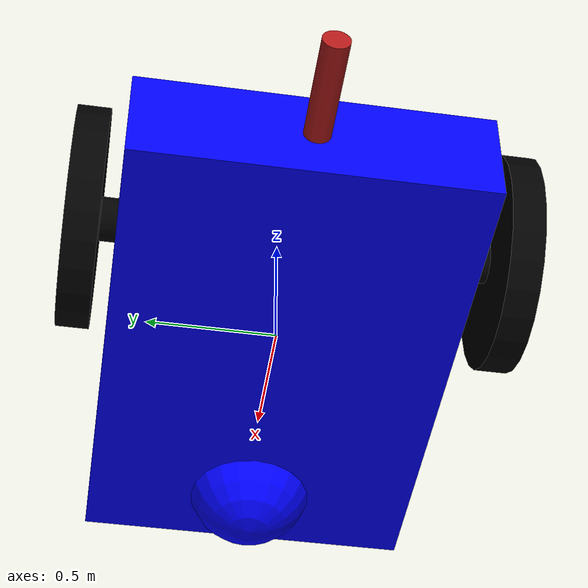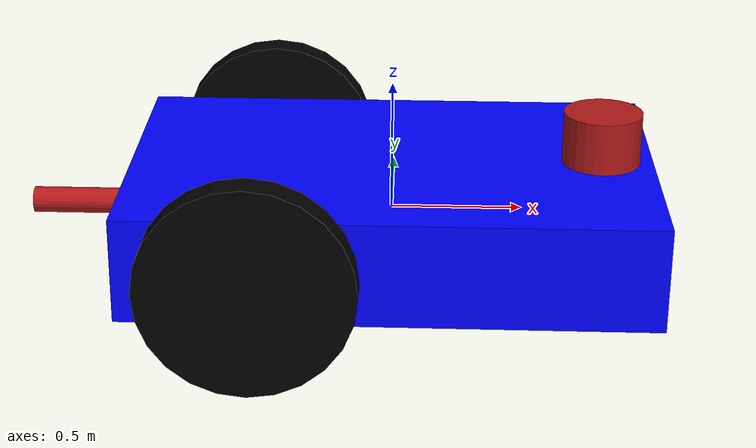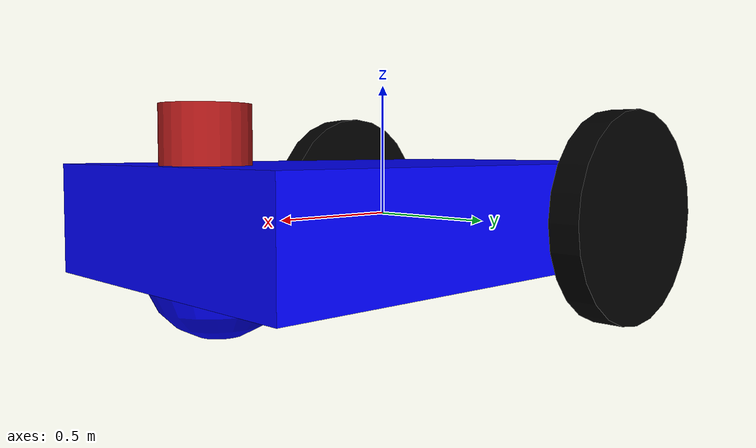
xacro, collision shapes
<?xml version="1.0" ?>

<robot name="robot" xmlns:xacro="http://www.ros.org/wiki/xacro">

    <xacro:include filename="$(find robot_description)/urdf/robot.gazebo" />

    <!-- Parameters -->
    <xacro:property name="chassis_mass" value="10" />
    <xacro:property name="pi" value="3.1415926535" />

    <!-- Link - chassis -->
    <link name="link_chassis">
        <inertial>
            <mass value="${chassis_mass}" />
            <origin xyz="0 0 0.3" rpy="0 0 0" />
            <inertia ixx="1.5417" ixy="0" ixz="0" iyy="3.467" iyz="0" izz="4.742" />
        </inertial>

        <collision>
            <geometry>
                <box size="2 1.3 0.4" />
            </geometry>
        </collision>

        <visual>
            <geometry>
                <mesh filename="package://robot_description/meshes/chassis.stl" />
            </geometry>
            <material name="Blue">
                <color rgba="0 0 1 1" />  <!-- from red to blue -->
            </material>
        </visual>
    </link>

    <!-- Link - left wheel -->
    <link name="link_left_wheel">
        <inertial>
            <mass value="1" />
            <origin xyz="0 0 0" rpy="0 0 0" />
            <inertia ixx="0.002526666666667" ixy="0" ixz="0" iyy="0.002526666666667" iyz="0" izz="0.005"/>
        </inertial>

        <!-- left tire -->
        <collision>
            <origin rpy="${pi / 2} 0 0" xyz="0 0.12 0" />
            <geometry>
                <cylinder length="0.12" radius="0.4"/>
            </geometry>
        </collision>
        <visual>
            <origin rpy="${pi / 2} 0 0" xyz="0 0.12 0" />
            <geometry>
                <mesh filename="package://robot_description/meshes/wheel.stl" />
            </geometry>
            <material name="Black">
                <color rgba="0 0 0 1" />  <!-- black -->
            </material>
        </visual>

        <!-- left axle -->
        <collision>
            <origin rpy="${pi / 2} 0 0" xyz="0 0.06 0" />
            <geometry>
                <cylinder length="0.12" radius="0.08"/>
            </geometry>
        </collision>
        <visual>
            <origin rpy="${pi / 2} 0 0" xyz="0 0.06 0" />
            <geometry>
                <cylinder length="0.12" radius="0.08"/>
            </geometry>
            <material name="Gray">
                <color rgba="0.4 0.4 0.4 1" />  <!-- gray -->
            </material>
        </visual>

        <!-- left spoke -->
        <collision>
            <origin rpy="${pi / 2} 0 0" xyz="0 0.12 0.01" />
            <geometry>
                <box size="0.6 0.05 0.02"/>
            </geometry>
        </collision>
        <visual>
            <origin rpy="${pi / 2} 0 0" xyz="0 0.12 0.01" />
            <geometry>
                <box size="0.6 0.05 0.02"/>
            </geometry>
            <material name="Gray">
                <color rgba="0.4 0.4 0.4 1" />  <!-- gray -->
            </material>
        </visual>
    </link>

    <!-- Joint - chassis / left wheel -->
    <joint name="joint_chassis_left_wheel" type="continuous">
        <origin rpy="0 0 0" xyz="-0.5 0.65 0" />
        <child link="link_left_wheel" />
        <parent link="link_chassis" />
        <axis rpy="0 0 0" xyz="0 1 0" />
        <limit effort="10000" velocity="1000" />
        <joint_properties damping="1.0" friction="1.0" />
    </joint>

    <!-- Link - right wheel -->
    <link name="link_right_wheel">
        <!-- right tire -->
        <inertial>
            <mass value="1" />
            <origin xyz="0 0 0" rpy="0 0 0" />
            <inertia ixx="0.002526666666667" ixy="0" ixz="0" iyy="0.002526666666667" iyz="0" izz="0.005"/>
        </inertial>
        <collision>
            <origin rpy="${pi / 2} 0 0" xyz="0 -0.12 0" />
            <geometry>
                <cylinder length="0.12" radius="0.4"/>
            </geometry>
        </collision>
        <visual>
            <origin rpy="${pi / 2} 0 0" xyz="0 -0.12 0" />
            <geometry>
                <mesh filename="package://robot_description/meshes/wheel.stl" />
            </geometry>
            <material name="Black">
                <color rgba="0 0 0 1" />  <!-- black -->
            </material>
        </visual>

        <!-- right axle -->
        <collision>
            <origin rpy="${pi / 2} 0 0" xyz="0 -0.06 0" />
            <geometry>
                <cylinder length="0.12" radius="0.08"/>
            </geometry>
        </collision>
        <visual>
            <origin rpy="${pi / 2} 0 0" xyz="0 -0.06 0" />
            <geometry>
                <cylinder length="0.12" radius="0.08"/>
            </geometry>
            <material name="Gray">
                <color rgba="0.4 0.4 0.4 1" />  <!-- gray -->
            </material>
        </visual>

        <!-- right spoke -->
        <collision>
            <origin rpy="${pi / 2} 0 0" xyz="0 -0.12 0.01" />
            <geometry>
                <box size="0.6 0.05 0.02"/>
            </geometry>
        </collision>
        <visual>
            <origin rpy="${pi / 2} 0 0" xyz="0 -0.12 0.01" />
            <geometry>
                <box size="0.6 0.05 0.02"/>
            </geometry>
            <material name="Gray">
                <color rgba="0.4 0.4 0.4 1" />  <!-- gray -->
            </material>
        </visual>
    </link>

    <!-- Joint - chassis / right wheel -->
    <joint name="joint_chassis_right_wheel" type="continuous">
        <origin rpy="0 0 0" xyz="-0.5 -0.65 0" />
        <child link="link_right_wheel" />
        <parent link="link_chassis" />
        <axis rpy="0 0 0" xyz="0 1 0" />
        <limit effort="10000" velocity="1000" />
        <joint_properties damping="1.0" friction="1.0" />
    </joint>

    <!-- Link - caster wheel -->
    <link name="link_caster_wheel">
        <inertial> <!-- Is this correct? -->
            <mass value="1" />
            <origin xyz="0 0 0.3" rpy="0 0 0" />
            <inertia ixx="0.002526666666667" ixy="0" ixz="0" iyy="0.002526666666667" iyz="0" izz="0.005"/>
        </inertial>

        <!-- Outer wheel-->
        <collision>
            <origin rpy="0 0 0" xyz="0 0 0" />
            <geometry>
                <sphere radius="0.25" />
            </geometry>
        </collision>

        <visual>
            <origin rpy="0 0 0" xyz="0 0 0" />
            <geometry>
                <sphere radius="0.25" />
            </geometry>
            <material name="Blue">
                <color rgba="0 0 1 1" />  <!-- from red to blue -->
            </material>
        </visual>

        <!-- Inner wheel-->
        <collision>
            <origin rpy="0 0 0" xyz="0 0 0" />
            <geometry>
                <sphere radius="0.125" />
            </geometry>
        </collision>

        <visual>
            <origin rpy="0 0 0" xyz="0 0 -0.15" />
            <geometry>
                <sphere radius="0.125" />
            </geometry>
            <material name="Gray">
                <color rgba="0.4 0.4 0.4 1" />  <!-- gray -->
            </material>
        </visual>
    </link>

    <!-- Joint - chassis / caster wheel -->
    <joint name="joint_chassis_caster_wheel" type="fixed">
        <origin rpy="0 0 0" xyz="0.75 0 -0.125" />
        <child link="link_caster_wheel" />
        <parent link="link_chassis" />
        <joint_properties damping="1.0" friction="1.0" />
    </joint>

    <!-- Link - laser scan -->
    <link name="link_laser_scan">
        <inertial>
            <origin xyz="0 0 0" rpy="0 0 0" />
            <mass value="0.5" />
            <inertia ixx="0.000252666666667" ixy="0" ixz="0" iyy="0.000252666666667" iyz="0" izz="0.0005"/>
        </inertial>
        <visual>
            <origin xyz="0 0 0" rpy="0 0 0" />
            <geometry>
                <cylinder radius="0.15" length="0.20"/>
            </geometry>
            <material name="Red">
                <color rgba="0.7 0.1 0.1 1" />
            </material>
        </visual>
        <collision>
            <origin xyz="0 0 0" rpy="0 0 0"/>
            <geometry>
                <cylinder radius="0.15" length="0.20"/>
            </geometry>
        </collision>
    </link>

    <!-- Joint - chassis - laser scan -->
    <joint name="joint_laser_scan_chassis" type="fixed">
        <origin rpy="0 0 0" xyz="0.8 0 0.3" />
        <child link="link_laser_scan" />
        <parent link="link_chassis" />
        <joint_properties damping="1.0" friction="1.0" />
    </joint>

    <!-- Link - robot tail -->
    <link name="link_tail">
        <inertial>
            <origin xyz="0 0 0" rpy="0 0 0" />
            <mass value="0.5" />
            <inertia ixx="0.000252666666667" ixy="0" ixz="0" iyy="0.000252666666667" iyz="0" izz="0.0005"/>
        </inertial>
        <visual>
            <origin xyz="-0.2 0 0" rpy="0 ${pi/2} 0" />
            <geometry>
                <cylinder radius="0.05" length="0.40"/>
            </geometry>
            <material name="Red">
                <color rgba="0.7 0.1 0.1 1" />
            </material>
        </visual>
        <collision>
            <origin xyz="-0.2 0 0" rpy="0 ${pi/2} 0"/>
            <geometry>
                <cylinder radius="0.05" length="0.40"/>
            </geometry>
        </collision>
    </link>

    <!-- Joint - chassis - robot tail-->
    <joint name="joint_tail" type="continuous">
        <origin rpy="0 0 0" xyz="-1 0 0" />
        <child link="link_tail" />
        <axis rpy="0 0 0" xyz="0 1 0" />
        <parent link="link_chassis" />
        <joint_properties damping="1.0" friction="1.0" />
    </joint>

    <!-- Transmission - joint tail-->
    <transmission name="tran_tail">
        <type>transmission_interface/SimpleTransmission</type>
        <joint name="joint_tail">
            <hardwareInterface>hardware_interface/EffortJointInterface</hardwareInterface>
        </joint>
        <actuator name="motor_joint_tail">
            <hardwareInterface>hardware_interface/EffortJointInterface</hardwareInterface>
            <mechanicalReduction>1</mechanicalReduction>
        </actuator>
    </transmission>

</robot>
